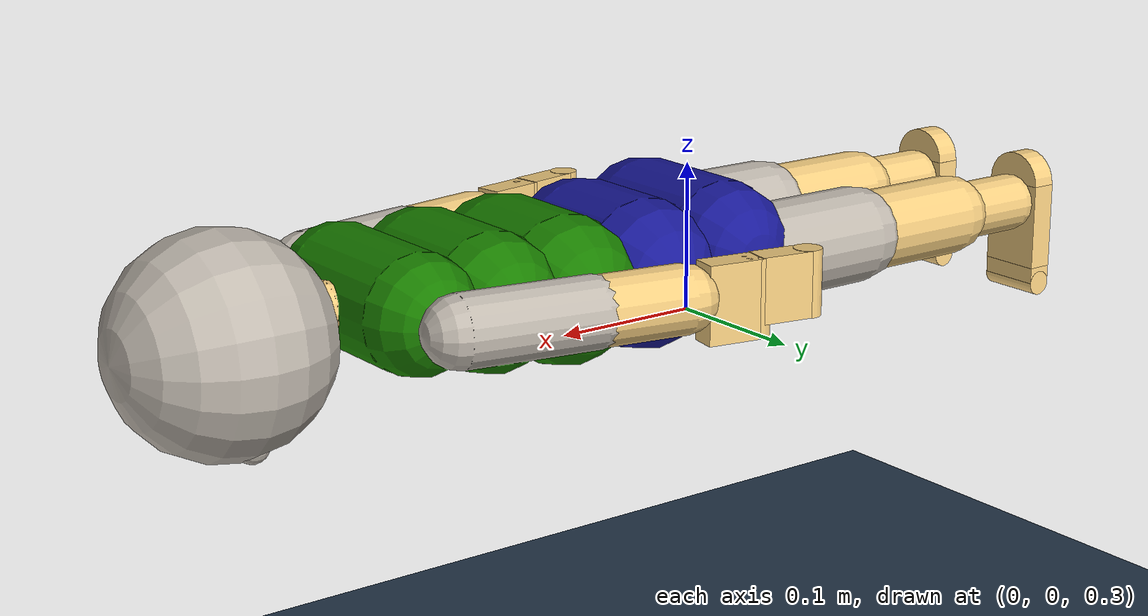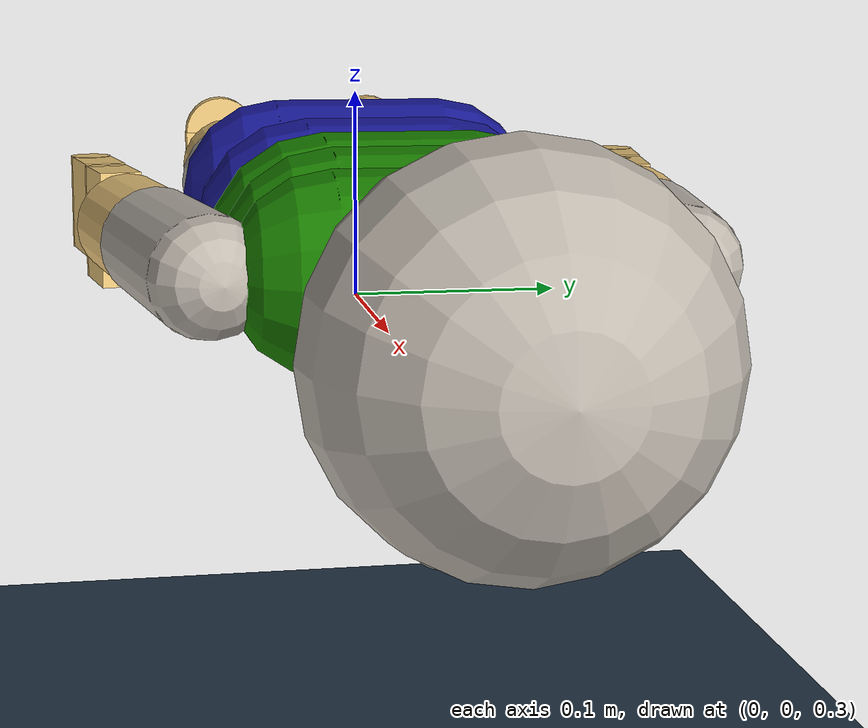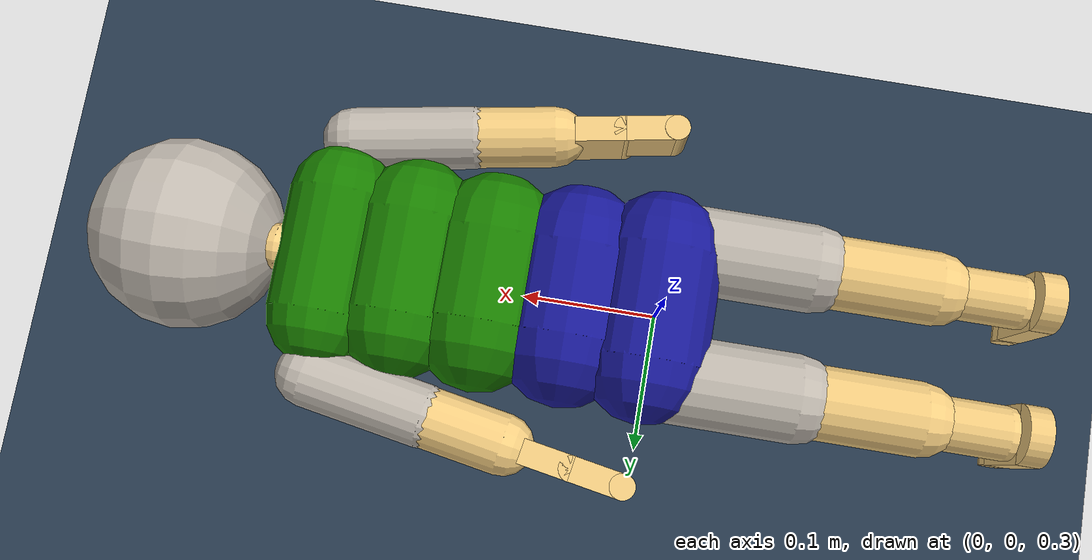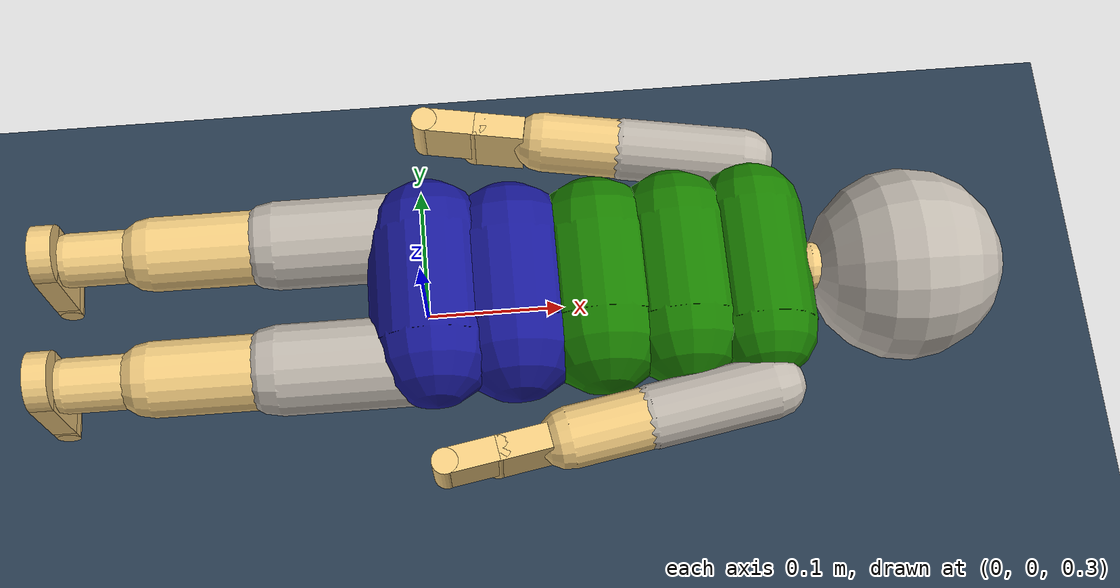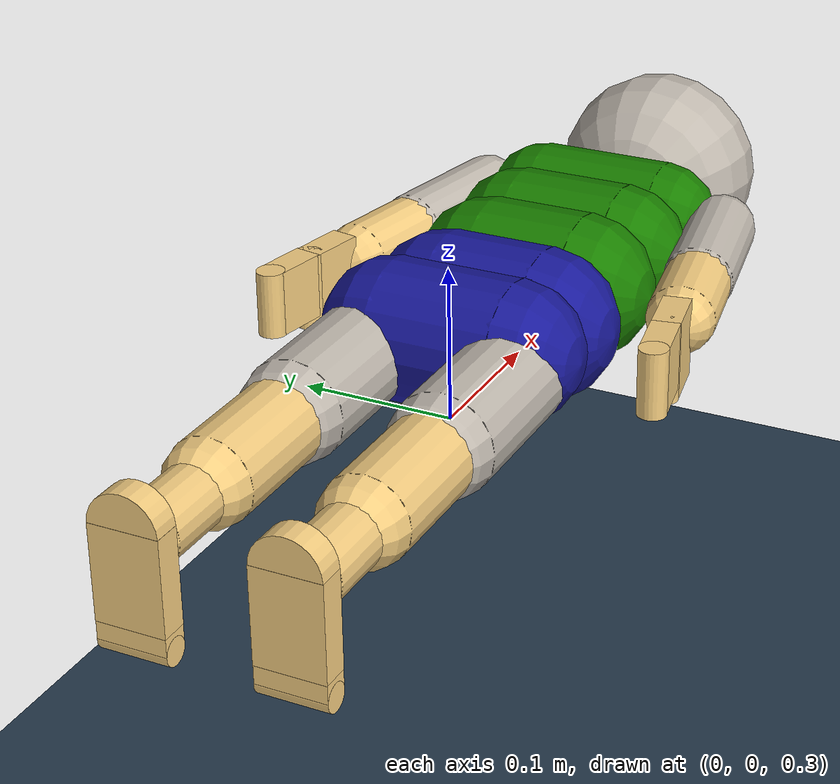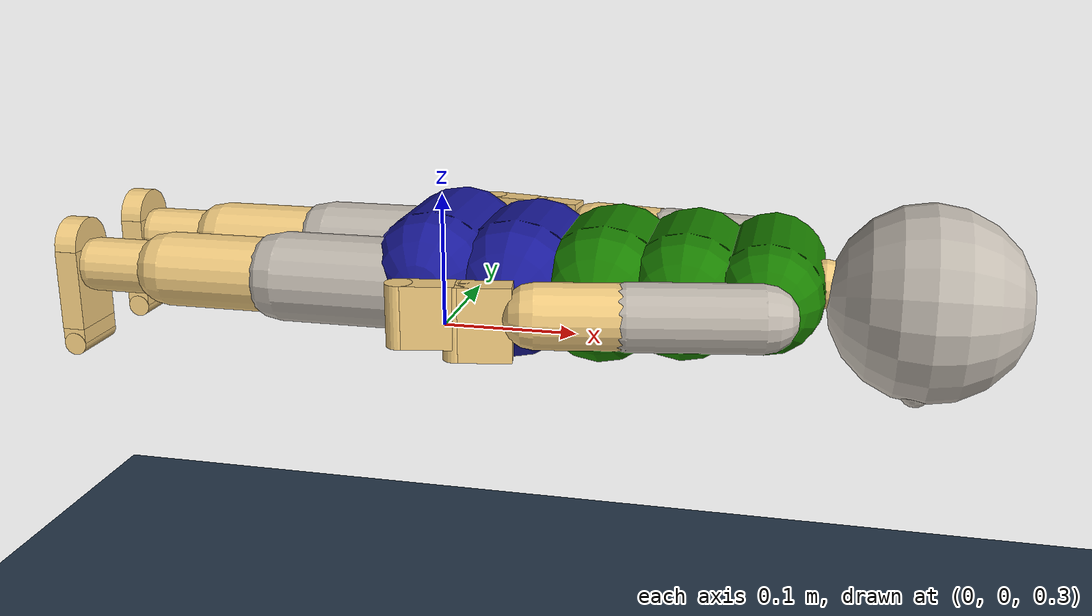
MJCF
<mujoco model="MIMo">

    <compiler inertiafromgeom="true" angle="degree"/>
    <option timestep="0.005" iterations="50" tolerance="1e-10" solver="Newton" jacobian="dense" cone="elliptic" impratio="1.0"/>
    <size nconmax="1000" njmax="5000" nstack="10000000" nuser_cam="3"/>

    <visual>
        <map force="0.1" zfar="30" znear="0.005"/>
        <rgba haze="0.15 0.25 0.35 1"/>
        <quality shadowsize="4096"/>
        <global offwidth="800" offheight="800"/>
    </visual>

    <asset>

        <texture type="skybox" builtin="gradient" rgb1="0.3 0.5 0.7" rgb2="0 0 0" width="512" height="512"/>

        <texture name="texplane" type="2d" builtin="checker" rgb1=".2 .3 .4" rgb2=".1 0.15 0.2" width="512" height="512" mark="cross" markrgb=".8 .8 .8"/>
        <material name="matplane" reflectance="0.3" texture="texplane" texrepeat="1 1" texuniform="true"/>

        <material name="orange" rgba="0.9 0.4 0 1" specular=".2" shininess=".8"/>

    </asset>

	<size nuser_actuator="3" />

	<default>
		<default class="mimo">
        	<joint limited="true" damping=".1" stiffness=".1" armature="0.001" solimplimit="0.98 0.99 0.001 .5 1" solreflimit="0.02 1" />
        	<geom condim="3" material="skin" friction="1 0.005 0.0002" solimp="0.95 0.99 0.001 0.5 1" solref="0.005 1" />
        	<motor ctrlrange="-1 1" ctrllimited="true" forcelimited="true" />
		</default>
    </default>

    <asset>

		<texture name="tex_head_default" type="cube" fileright="tex/head_front.png" fileleft="tex/head_back.png" fileup="tex/head_left.png" filedown="tex/head_right.png" filefront="tex/head_top.png" rgb1="0.95 .8 .5" />
		<texture name="tex_head_happy" type="cube" fileright="tex/head_front_happy.png" fileleft="tex/head_back.png" fileup="tex/head_left.png" filedown="tex/head_right.png" filefront="tex/head_top.png" rgb1="0.95 .8 .5" />
		<texture name="tex_head_sad" type="cube" fileright="tex/head_front_sad.png" fileleft="tex/head_back.png" fileup="tex/head_left.png" filedown="tex/head_right.png" filefront="tex/head_top.png" rgb1="0.95 .8 .5" />
		<texture name="tex_head_surprised" type="cube" fileright="tex/head_front_surprised.png" fileleft="tex/head_back.png" fileup="tex/head_left.png" filedown="tex/head_right.png" filefront="tex/head_top.png" rgb1="0.95 .8 .5" />
		<texture name="tex_head_angry" type="cube" fileright="tex/head_front_angry.png" fileleft="tex/head_back.png" fileup="tex/head_left.png" filedown="tex/head_right.png" filefront="tex/head_top.png" rgb1="0.95 .8 .5" />
		<texture name="tex_head_disgusted" type="cube" fileright="tex/head_front_disgusted.png" fileleft="tex/head_back.png" fileup="tex/head_left.png" filedown="tex/head_right.png" filefront="tex/head_top.png" rgb1="0.95 .8 .5" />
		<texture name="tex_head_scared" type="cube" fileright="tex/head_front_scared.png" fileleft="tex/head_back.png" fileup="tex/head_left.png" filedown="tex/head_right.png" filefront="tex/head_top.png" rgb1="0.95 .8 .5" />
		<texture name="tex_top_sleeve" type="cube" fileright="tex/sleeve_right.png" fileleft="tex/sleeve_left.png" fileup="tex/sleeve_up.png" filedown="tex/sleeve_down.png" filefront="tex/sleeve_front.png" fileback="tex/sleeve_back.png" rgb1="0.95 .8 .5" />
		<texture name="tex_pants_leg" type="cube" fileright="tex/leg_right.png" fileleft="tex/leg_left.png" fileup="tex/leg_up.png" filedown="tex/leg_down.png" filefront="tex/leg_front.png" fileback="tex/leg_back.png" rgb1="0.95 .8 .5" />
		<texture name="tex_eye_left" type="cube" fileright="tex/eye_pupil_left.png" rgb1="1 1 1" />
		<texture name="tex_eye_right" type="cube" fileright="tex/eye_pupil_right.png" rgb1="1 1 1" />

		<material name="skin" rgba="0.95 0.8 0.5 1" specular=".15" shininess=".7" />
		<material name="buttons" rgba=".05 .05 .05 1" specular=".9" shininess=".9" />
		<material name="head" texture="tex_head_default" texuniform="true" specular=".0" shininess=".0" />
		<material name="top_up" rgba=".1 .5 0.0 1" specular=".0" shininess=".0" />
		<material name="top_middle" rgba=".1 .5 0.0 1" specular=".0" shininess=".0" />
		<material name="top_down" rgba=".1 .5 0.0 1" specular=".0" shininess=".0" />
		<material name="top_sleeve" texture="tex_top_sleeve" texuniform="true" specular=".0" shininess=".0" />
		<material name="pants_up" rgba="0.1 0.1 0.6 1" specular=".0" shininess=".0" />
		<material name="pants_down" rgba="0.1 0.1 0.6 1" specular=".0" shininess=".0" />
		<material name="pants_leg" texture="tex_pants_leg" texuniform="true" specular=".0" shininess=".0" />
		<material name="eye_left" texture="tex_eye_left" texuniform="true" specular=".0" shininess=".0" />
		<material name="eye_right" texture="tex_eye_right" texuniform="true" specular=".0" shininess=".0" />

    </asset>

	<contact>
		<pair geom1="lb" geom2="ub1" condim="1" />
		<exclude body1="left_eye" body2="upper_body" />
		<exclude body1="right_eye" body2="upper_body" />
	</contact>

	<tendon>
		<fixed class="mimo" name="hip_bend" limited="true" range="-.01 .01">
			<joint joint="robot:hip_bend1" coef="1" />
			<joint joint="robot:hip_bend2" coef="-1" />
		</fixed>
		<fixed class="mimo" name="hip_rotation" limited="true" range="-.01 .01">
			<joint joint="robot:hip_rot1" coef="1" />
			<joint joint="robot:hip_rot2" coef="-1" />
		</fixed>
		<fixed class="mimo" name="hip_lean" limited="true" range="-.01 .01">
			<joint joint="robot:hip_lean1" coef="1" />
			<joint joint="robot:hip_lean2" coef="-.5" />
		</fixed>
		<fixed class="mimo" name="head_limits1" limited="true" range="-2.1 2.1">
			<joint joint="robot:head_swivel" coef="1" />
			<joint joint="robot:head_tilt_side" coef="1" />
		</fixed>
		<fixed class="mimo" name="head_limits2" limited="true" range="-2.1 2.1">
			<joint joint="robot:head_tilt" coef="1" />
			<joint joint="robot:head_tilt_side" coef="1" />
		</fixed>
		<fixed class="mimo" name="head_limits3" limited="true" range="-2.1 2.1">
			<joint joint="robot:head_swivel" coef="1" />
			<joint joint="robot:head_tilt" coef="1" />
		</fixed>
		<fixed class="mimo" name="head_limits1_sym" limited="true" range="-2.1 2.1">
			<joint joint="robot:head_swivel" coef="1" />
			<joint joint="robot:head_tilt_side" coef="-1" />
		</fixed>
		<fixed class="mimo" name="head_limits2_sym" limited="true" range="-2.1 2.1">
			<joint joint="robot:head_tilt" coef="1" />
			<joint joint="robot:head_tilt_side" coef="-1" />
		</fixed>
		<fixed class="mimo" name="head_limits3_sym" limited="true" range="-2.1 2.1">
			<joint joint="robot:head_swivel" coef="1" />
			<joint joint="robot:head_tilt" coef="-1" />
		</fixed>
	</tendon>

	<sensor>
		<accelerometer name="vestibular_acc" site="vestibular" />
		<gyro name="vestibular_gyro" site="vestibular" />

		<torque name="proprio:neck" site="torque_neck" />
		<torque name="proprio:left_eye" site="torque_left_eye" />
		<torque name="proprio:right_eye" site="torque_right_eye" />

		<torque name="proprio:chest" site="torque_chest" />
		<torque name="proprio:trunk_upper" site="torque_ub" />
		<torque name="proprio:trunk_lower" site="torque_lb" />

		<torque name="proprio:right_shoulder" site="torque_right_shoulder" />
		<torque name="proprio:right_elbow" site="torque_right_elbow" />
		<torque name="proprio:right_wrist" site="torque_right_wrist" />
		<torque name="proprio:right_fingers" site="torque_right_fingers" />

		<torque name="proprio:left_shoulder" site="torque_left_shoulder" />
		<torque name="proprio:left_elbow" site="torque_left_elbow" />
		<torque name="proprio:left_wrist" site="torque_left_wrist" />
		<torque name="proprio:left_fingers" site="torque_left_fingers" />

		<torque name="proprio:right_hip" site="torque_right_hip" />
		<torque name="proprio:right_knee" site="torque_right_knee" />
		<torque name="proprio:right_ankle" site="torque_right_ankle" />
		<torque name="proprio:right_toes" site="torque_right_toes" />

		<torque name="proprio:left_hip" site="torque_left_hip" />
		<torque name="proprio:left_knee" site="torque_left_knee" />
		<torque name="proprio:left_ankle" site="torque_left_ankle" />
		<torque name="proprio:left_toes" site="torque_left_toes" />

		<framelinvel name="kobayashi:left_wrist" objtype="site" objname="KOBAYASHI_LWrist" />
		<framelinvel name="kobayashi:right_wrist" objtype="site" objname="KOBAYASHI_RWrist" />
		<framelinvel name="kobayashi:left_ankle" objtype="site" objname="KOBAYASHI_LAnkle" />
		<framelinvel name="kobayashi:right_ankle" objtype="site" objname="KOBAYASHI_RAnkle" />
		<framelinvel name="kobayashi:torso" objtype="site" objname="KOBAYASHI_Torso" />
	</sensor>

  <actuator>
		<motor class="mimo" name="act:hip_bend" joint="robot:hip_bend1" gear="8.348962822270403" forcerange="-1 .765" user=".8574 32.93 22.97" />
		<motor class="mimo" name="act:hip_twist" joint="robot:hip_rot1" gear="2.864530722574817" forcerange="-1 1" user="1.699 8.136 8.136" />
		<motor class="mimo" name="act:hip_lean" joint="robot:hip_lean1" gear="5.721170175941438" forcerange="-1 1" user="1.278 1.264 1.264" />

		<motor class="mimo" name="act:chest_twist" joint="robot:chest_rot" gear="0.28408569149502316" forcerange="-1 1" user="1.699 8.136 8.136" />
		<motor class="mimo" name="act:chest_lean" joint="robot:chest_lean" gear="0.5681713829900463" forcerange="-1 1" user="1.278 1.264 1.264" />

		<motor class="mimo" name="act:head_swivel" joint="robot:head_swivel" gear="1.5138589850766264" forcerange="-1 1" user=".6665 24.87 24.87" />
		<motor class="mimo" name="act:head_tilt" joint="robot:head_tilt" gear="2.775408139307148" forcerange="-1 .55" user=".9338 31.39 16.86" />
		<motor class="mimo" name="act:head_tilt_side" joint="robot:head_tilt_side" gear="1.5138589850766264" forcerange="-1 1" user="1.068 15.69 15.69" />

		<motor class="mimo" name="act:left_eye_horizontal" joint="robot:left_eye_horizontal" gear="0.004541576955229879" forcerange="-1 1" user="5.110 .03025 .03025" />
		<motor class="mimo" name="act:left_eye_vertical" joint="robot:left_eye_vertical" gear="0.004541576955229879" forcerange="-1 1" user="6.179 .02619 .02771" />
		<motor class="mimo" name="act:left_eye_torsional" joint="robot:left_eye_torsional" gear="0.0031118212471019538" forcerange="-1 1" user="25.03 .003686 .003686" />
		<motor class="mimo" name="act:right_eye_horizontal" joint="robot:right_eye_horizontal" gear="0.004541576955229879" forcerange="-1 1" user="5.110 .03025 .03025" />
		<motor class="mimo" name="act:right_eye_vertical" joint="robot:right_eye_vertical" gear="0.004541576955229879" forcerange="-1 1" user="6.179 .02619 .02771" />
		<motor class="mimo" name="act:right_eye_torsional" joint="robot:right_eye_torsional" gear="0.0031118212471019538" forcerange="-1 1" user="25.03 .003686 .003686" />

		<motor class="mimo" name="act:right_shoulder_horizontal" joint="robot:right_shoulder_horizontal" gear="1.3755408505747688" forcerange="-1 1" user="1.811 18.80 15.30" />
		<motor class="mimo" name="act:right_shoulder_abduction" joint="robot:right_shoulder_ad_ab" gear="3.0567574457217086" forcerange="-.6875 1" user=".8793 44.17 69.23" />
		<motor class="mimo" name="act:right_shoulder_internal" joint="robot:right_shoulder_rotation" gear="1.9104734035760678" forcerange="-1 .64" user="1.498 25.09 17.10" />
		<motor class="mimo" name="act:right_elbow" joint="robot:right_elbow" gear="2.753398767624756" forcerange="-1 .83" user="1.566 35.43 27.04" />
		<motor class="mimo" name="act:right_wrist_rotation" joint="robot:right_hand1" gear="0.4985704438084411" forcerange="-1 1" user="1.513 7.842 7.842" />
		<motor class="mimo" name="act:right_wrist_flexion" joint="robot:right_hand2" gear="0.8831819290320958" forcerange="-1 .57" user="1.455 13.66 7.874" />
		<motor class="mimo" name="act:right_wrist_ulnar" joint="robot:right_hand3" gear="0.67663131659717" forcerange="-.87 1" user="2.254 5.155 6.021" />
		<motor class="mimo" name="act:right_fingers" joint="robot:right_fingers" gear="0.491448008896892" forcerange="-1 .33" user="3.019 6.854 2.551" />

		<motor class="mimo" name="act:left_shoulder_horizontal" joint="robot:left_shoulder_horizontal" gear="1.3755408505747688" forcerange="-1 1" user="1.811 18.80 15.30" />
		<motor class="mimo" name="act:left_shoulder_abduction" joint="robot:left_shoulder_ad_ab" gear="3.0567574457217086" forcerange="-.6875 1" user=".8793 44.17 69.23" />
		<motor class="mimo" name="act:left_shoulder_internal" joint="robot:left_shoulder_rotation" gear="1.9104734035760678" forcerange="-1 .64" user="1.498 25.09 17.10" />
		<motor class="mimo" name="act:left_elbow" joint="robot:left_elbow" gear="2.753398767624756" forcerange="-1 .83" user="1.566 35.43 27.04" />
		<motor class="mimo" name="act:left_wrist_rotation" joint="robot:left_hand1" gear="0.4985704438084411" forcerange="-1 1" user="1.513 7.842 7.842" />
		<motor class="mimo" name="act:left_wrist_flexion" joint="robot:left_hand2" gear="0.8831819290320958" forcerange="-1 .57" user="1.455 13.66 7.874" />
		<motor class="mimo" name="act:left_wrist_ulnar" joint="robot:left_hand3" gear="0.67663131659717" forcerange="-.87 1" user="2.254 5.155 6.021" />
		<motor class="mimo" name="act:left_fingers" joint="robot:left_fingers" gear="0.491448008896892" forcerange="-1 .33" user="3.019 6.854 2.551" />

		<motor class="mimo" name="act:right_hip_flex" joint="robot:right_hip1" gear="4.843924701479123" forcerange="-1 1" user="1.083 71.25 92.49" />
		<motor class="mimo" name="act:right_hip_abduction" joint="robot:right_hip2" gear="3.778261267153716" forcerange="-1 1" user="1.488 24.81 29.20" />
		<motor class="mimo" name="act:right_hip_rotation" joint="robot:right_hip3" gear="2.1434366804045117" forcerange="-.75 1" user="1.860 12.32 15.78" />
		<motor class="mimo" name="act:right_knee" joint="robot:right_knee" gear="7.503624246731628" forcerange="-.65 1" user="1.450 63.16 89.27" />
		<motor class="mimo" name="act:right_foot_flexion" joint="robot:right_foot1" gear="2.3013445445638028" forcerange="-1 .5" user="1.430 21.34 11.87" />
		<motor class="mimo" name="act:right_foot_inversion" joint="robot:right_foot2" gear="0.706232717379368" forcerange="-.91 1" user="1.988 4.184 4.645" />
		<motor class="mimo" name="act:right_foot_rotation" joint="robot:right_foot3" gear="0.7305855697027945" forcerange="-1 1" user="2.688 3.868 3.625" />
		<motor class="mimo" name="act:right_toes" joint="robot:right_toes" gear="0.20091103166826849" forcerange="-1 .3" user="1.290 2.947 .8440" />

		<motor class="mimo" name="act:left_hip_flex" joint="robot:left_hip1" gear="4.843924701479123" forcerange="-1 1" user="1.083 71.25 92.49" />
		<motor class="mimo" name="act:left_hip_abduction" joint="robot:left_hip2" gear="3.778261267153716" forcerange="-1 1" user="1.488 24.81 29.20" />
		<motor class="mimo" name="act:left_hip_rotation" joint="robot:left_hip3" gear="2.1434366804045117" forcerange="-.75 1" user="1.860 12.32 15.78" />
		<motor class="mimo" name="act:left_knee" joint="robot:left_knee" gear="7.503624246731628" forcerange="-.65 1" user="1.450 63.16 89.27" />
		<motor class="mimo" name="act:left_foot_flexion" joint="robot:left_foot1" gear="2.3013445445638028" forcerange="-1 .5" user="1.430 21.34 11.87" />
		<motor class="mimo" name="act:left_foot_inversion" joint="robot:left_foot2" gear="0.706232717379368" forcerange="-.91 1" user="1.988 4.184 4.645" />
		<motor class="mimo" name="act:left_foot_rotation" joint="robot:left_foot3" gear="0.7305855697027945" forcerange="-1 1" user="2.688 3.868 3.625" />
		<motor class="mimo" name="act:left_toes" joint="robot:left_toes" gear="0.20091103166826849" forcerange="-1 .3" user="1.290 2.947 .8440" />
	</actuator>

	<equality>
		<joint name="robot:hip_lean1" joint1="robot:hip_lean1" active="false" polycoef="0 1 0 0 0" />
		<joint name="robot:hip_rot1" joint1="robot:hip_rot1" active="false" polycoef="0 1 0 0 0" />
		<joint name="robot:hip_bend1" joint1="robot:hip_bend1" active="false" polycoef="0 1 0 0 0" />
		<joint name="robot:hip_lean2" joint1="robot:hip_lean2" active="false" polycoef="0 1 0 0 0" />
		<joint name="robot:hip_rot2" joint1="robot:hip_rot2" active="false" polycoef="0 1 0 0 0" />
		<joint name="robot:hip_bend2" joint1="robot:hip_bend2" active="false" polycoef="0 1 0 0 0" />
		<joint name="robot:head_swivel" joint1="robot:head_swivel" active="false" polycoef="0 1 0 0 0" />
		<joint name="robot:head_tilt" joint1="robot:head_tilt" active="false" polycoef="0 1 0 0 0" />
		<joint name="robot:head_tilt_side" joint1="robot:head_tilt_side" active="false" polycoef="0 1 0 0 0" />
		<joint name="robot:left_eye_horizontal" joint1="robot:left_eye_horizontal" active="false" polycoef="0 1 0 0 0" />
		<joint name="robot:left_eye_vertical" joint1="robot:left_eye_vertical" active="false" polycoef="0 1 0 0 0" />
		<joint name="robot:left_eye_torsional" joint1="robot:left_eye_torsional" active="false" polycoef="0 1 0 0 0" />
		<joint name="robot:right_eye_horizontal" joint1="robot:right_eye_horizontal" active="false" polycoef="0 1 0 0 0" />
		<joint name="robot:right_eye_vertical" joint1="robot:right_eye_vertical" active="false" polycoef="0 1 0 0 0" />
		<joint name="robot:right_eye_torsional" joint1="robot:right_eye_torsional" active="false" polycoef="0 1 0 0 0" />
		<joint name="robot:right_shoulder_horizontal" joint1="robot:right_shoulder_horizontal" active="false" polycoef="0 1 0 0 0" />
		<joint name="robot:right_shoulder_ad_ab" joint1="robot:right_shoulder_ad_ab" active="false" polycoef="0 1 0 0 0" />
		<joint name="robot:right_shoulder_rotation" joint1="robot:right_shoulder_rotation" active="false" polycoef="0 1 0 0 0" />
		<joint name="robot:right_elbow" joint1="robot:right_elbow" active="false" polycoef="0 1 0 0 0" />
		<joint name="robot:right_hand1" joint1="robot:right_hand1" active="false" polycoef="0 1 0 0 0" />
		<joint name="robot:right_hand2" joint1="robot:right_hand2" active="false" polycoef="0 1 0 0 0" />
		<joint name="robot:right_hand3" joint1="robot:right_hand3" active="false" polycoef="0 1 0 0 0" />
		<joint name="robot:right_fingers" joint1="robot:right_fingers" active="false" polycoef="0 1 0 0 0" />
		<joint name="robot:left_shoulder_horizontal" joint1="robot:left_shoulder_horizontal" active="false" polycoef="0 1 0 0 0" />
		<joint name="robot:left_shoulder_ad_ab" joint1="robot:left_shoulder_ad_ab" active="false" polycoef="0 1 0 0 0" />
		<joint name="robot:left_shoulder_rotation" joint1="robot:left_shoulder_rotation" active="false" polycoef="0 1 0 0 0" />
		<joint name="robot:left_elbow" joint1="robot:left_elbow" active="false" polycoef="0 1 0 0 0" />
		<joint name="robot:left_hand1" joint1="robot:left_hand1" active="false" polycoef="0 1 0 0 0" />
		<joint name="robot:left_hand2" joint1="robot:left_hand2" active="false" polycoef="0 1 0 0 0" />
		<joint name="robot:left_hand3" joint1="robot:left_hand3" active="false" polycoef="0 1 0 0 0" />
		<joint name="robot:left_fingers" joint1="robot:left_fingers" active="false" polycoef="0 1 0 0 0" />
		<joint name="robot:right_hip1" joint1="robot:right_hip1" active="false" polycoef="0 1 0 0 0" />
		<joint name="robot:right_hip2" joint1="robot:right_hip2" active="false" polycoef="0 1 0 0 0" />
		<joint name="robot:right_hip3" joint1="robot:right_hip3" active="false" polycoef="0 1 0 0 0" />
		<joint name="robot:right_knee" joint1="robot:right_knee" active="false" polycoef="0 1 0 0 0" />
		<joint name="robot:right_foot1" joint1="robot:right_foot1" active="false" polycoef="0 1 0 0 0" />
		<joint name="robot:right_foot2" joint1="robot:right_foot2" active="false" polycoef="0 1 0 0 0" />
		<joint name="robot:right_foot3" joint1="robot:right_foot3" active="false" polycoef="0 1 0 0 0" />
		<joint name="robot:right_toes" joint1="robot:right_toes" active="false" polycoef="0 1 0 0 0" />
		<joint name="robot:left_hip1" joint1="robot:left_hip1" active="false" polycoef="0 1 0 0 0" />
		<joint name="robot:left_hip2" joint1="robot:left_hip2" active="false" polycoef="0 1 0 0 0" />
		<joint name="robot:left_hip3" joint1="robot:left_hip3" active="false" polycoef="0 1 0 0 0" />
		<joint name="robot:left_knee" joint1="robot:left_knee" active="false" polycoef="0 1 0 0 0" />
		<joint name="robot:left_foot1" joint1="robot:left_foot1" active="false" polycoef="0 1 0 0 0" />
		<joint name="robot:left_foot2" joint1="robot:left_foot2" active="false" polycoef="0 1 0 0 0" />
		<joint name="robot:left_foot3" joint1="robot:left_foot3" active="false" polycoef="0 1 0 0 0" />
		<joint name="robot:left_toes" joint1="robot:left_toes" active="false" polycoef="0 1 0 0 0" />
	</equality>

    <equality>
        <weld body1="head" body2="upper_body"/>
        <weld body1="left_eye" body2="head"/>
        <weld body1="right_eye" body2="head"/>
    </equality>

    <worldbody>

        <geom name="floor" pos="0 0 0" size="0 0 .25" type="plane" material="matplane" condim="3"/>

        <light directional="false" diffuse=".4 .4 .4" specular="0 0 0" pos="0 0 10" dir="0 0 -1" castshadow="false"/>
        <light mode="targetbodycom" target="upper_body" directional="false" diffuse=".75 .75 .75" specular="0.3 0.3 0.3" pos="3 0 5" dir="0 0 -1"/>

        <body name="mimo_location" pos="0 0 0.35" euler="0 90 0">
            <freejoint name="mimo_location"/>

	<body childclass="mimo" name="hip" pos="0 0 0">

		<geom name="lb" type="capsule" size="0.04435645780457978 0.039735993449936044 0.0" mass="0.9141246250773187" material="pants_down" pos="-0.002 0.0 0.004620464354643727" euler="90 0 0" />
		<site name="lowerBody_center" type="sphere" size=".01 .01 .01" pos="0 0 0" />
		<site name="BODY_25:MidHip" type="sphere" size=".005" pos="0.005 0.0 -0.007" rgba="0 0 0 1" />
		<body name="lower_body" pos="0.002 0.0 0.07023105819058463">
			<joint name="robot:hip_lean1" type="hinge" pos="0.0 0.0 -0.04897692215922351" axis="1 0 0" range="-14 14" stiffness="3.38" damping="0.77" frictionloss=".049" armature="0.01" />
			<joint name="robot:hip_rot1" type="hinge" pos="0.0 0.0 -0.04897692215922351" axis="0 0 1" range="-18 18" stiffness="1.45" damping="0.29" frictionloss=".018" armature="0.01" />
			<joint name="robot:hip_bend1" type="hinge" pos="0.0 0.0 -0.04897692215922351" axis="0 1 0" range="-17 30.5" stiffness="2.20" damping="0.84" frictionloss="0.040" armature="0.01" />
			<site name="torque_lb" type="sphere" size="0.01" pos="0 0 0" group="4" />
			<geom name="cb" type="capsule" size="0.04897692215922351 0.03234325048250609 0.0" mass="1.0451986066254393" material="pants_up" contype="0" pos="0.005 0.0 -0.007392742967429963" euler="90 0 0" />

			<body name="upper_body" pos="-0.002 0.0 0.08409245125451584">

				<site name="KOBAYASHI_Torso" type="sphere" size="0.01" pos=".052 0 0.05" rgba="1 0 0 0" />
				<joint name="robot:hip_lean2" type="hinge" pos="0.0 0.0 -0.048052829288294754" axis="1 0 0" range="-27 27" stiffness="1.69" damping="0.38" frictionloss=".024" armature="0.01" />
				<joint name="robot:hip_rot2" type="hinge" pos="0.0 0.0 -0.048052829288294754" axis="0 0 1" range="-18 18" stiffness="1.45" damping="0.29" frictionloss=".018" armature="0.01" />
				<joint name="robot:hip_bend2" type="hinge" pos="0.0 0.0 -0.048052829288294754" axis="0 1 0" range="-17 30.5" stiffness="2.20" damping="0.84" frictionloss="0.040" armature="0.01" />
				<site name="torque_ub" type="sphere" size="0.01" pos="0 0 0" group="4" />
				<geom name="ub1" type="capsule" size="0.048052829288294754 0.03234325048250608 0.0" mass="0.8587279152357891" material="top_down" pos="0.007 0.0 -0.02957097186971985" euler="90 0 0" />
				<geom name="ub2" type="capsule" size="0.04435645780457978 0.036039621966221055 0.0" mass="0.7495916620864511" material="top_middle" pos="0.004 0.0 0.027722786127862362" euler="90 0 0" />
				<geom name="neck" type="capsule" size="0.017344627891129175 1e-06 0.0" mass="0.0" material="skin" pos="0.0 0.0 0.12105716609166564" euler="0 0 0" />

				<body name="chest" pos="0.0 0.0 0.08316835838358708">
					<site name="BODY_25:Neck" type="sphere" size=".005 .005 .005" pos="0.0 0.0 0.0" rgba="0 0 0 1" />
					<joint name="robot:chest_lean" type="hinge" pos="0 0 0" axis="1 0 0" range="-9 9" stiffness="1.69" damping="0.38" frictionloss=".024" armature="0.01" />
					<joint name="robot:chest_rot" type="hinge" pos="0 0 0" axis="0 0 1" range="-18 18" stiffness="1.45" damping="0.29" frictionloss=".018" armature="0.01" />
					<site name="torque_chest" type="sphere" size="0.01" pos="0 0 0" group="4" />
					<geom name="ub3" type="capsule" size="0.037887807708078564 0.04343236493365103 0.0" mass="0.5695128987554394" material="top_up" pos="0 0 0" euler="90 0 0" />

					<body name="right_upper_arm" pos="0.0 -0.08701004209137668 0.0" euler="170 0 0">

						<site name="BODY_25:RShoulder" type="sphere" size=".005 .005 .005" pos="0.0 0.0 0.0" rgba="0 0 0 1" />
						<joint name="robot:right_shoulder_horizontal" type="hinge" pos="0 0 0" axis="0 1 -4" range="-28 118" stiffness=".09" damping=".05" frictionloss=".0009" armature="0.004" />
						<joint name="robot:right_shoulder_ad_ab" type="hinge" pos="0 0 0" axis="-1 0 0" range="-84 183" stiffness=".11" damping=".10" frictionloss=".0014" armature="0.004" />
						<joint name="robot:right_shoulder_rotation" type="hinge" pos="0 0 0" axis="0 0 -1" range="-99 67" stiffness=".12" damping=".07" frictionloss=".0008" armature="0.004" />
						<site name="torque_right_shoulder" type="sphere" size="0.01" pos="0 0 0" group="4" />
						<geom name="right_uarm1" type="capsule" material="top_sleeve" size="0.022759477798588335 0.04397066491709746 0.0" mass="0.20510842460792666" pos="0.0 0.0 0.04397066491709746" euler="0 0 0" />
						<body name="right_lower_arm" pos="0.0 -0.0 0.08794132983419492" euler="0 0 0">

							<site name="KOBAYASHI_RWrist" type="sphere" size=".01" pos="0 0.025 .07" rgba="1 0 0 0" />
							<site name="BODY_25:RElbow" type="sphere" size=".005 .005 .005" pos="0.0 0.0 0.0" rgba="0 0 0 1" />
							<joint name="robot:right_elbow" type="hinge" pos="0 0 0" axis="0 -1 0" springref="-20" range="-146 5" stiffness=".13" damping=".11" frictionloss=".030" armature="0.002" />
							<site name="torque_right_elbow" type="sphere" size="0.01" pos="0 0 0" group="4" />
							<geom name="right_larm" type="capsule" size="0.021959390287013505 0.029270071859147265 0.0" mass="0.14172355323357425" pos="0.0 0.0 0.029270071859147265" />
							<body name="right_hand" pos="0.0 -0.0 0.07220061297383298" euler="0 0 0">
								<site name="BODY_25:RWrist" type="sphere" size=".005 .005 .005" pos="0.0 0.0 0.0" />
								<joint name="robot:right_hand1" type="hinge" pos="0 0 0" axis="0 0 -1" springref="-20" range="-90 90" stiffness=".22" damping=".03" frictionloss=".007" armature="0.001" />
								<joint name="robot:right_hand2" type="hinge" pos="0 0 0" axis="-1 0 0" range="-92 86" stiffness=".33" damping=".11" frictionloss=".007" armature="0.001" />
								<joint name="robot:right_hand3" type="hinge" pos="0 0 0" axis="0 1 0" range="-53 48" stiffness=".38" damping=".11" frictionloss=".007" armature="0.001" />
								<site name="torque_right_wrist" type="sphere" size="0.01" pos="0 0 0" group="4" />
								<geom name="geom:right_hand1" type="box" size="0.025247222919919644 0.00898395550261324 0.01835341721107353" mass="0.030733306643334624" pos="0.00449197775130662 0.0 0.01835341721107353" />
								<geom name="geom:right_hand2" type="cylinder" size="0.00918395550261324 0.025247222919919644 0.0" mass="0.011794798575441133" pos="0.00449197775130662 0.0 0.03670683442214706" euler="0 90 0" />
								<body name="right_fingers" pos="0.0 -0.0 0.03670683442214706">
									<joint name="robot:right_fingers" type="hinge" pos="0 0 0" axis="-1 0 0" springref="-40" range="-160 8" stiffness=".017" damping=".018" frictionloss=".0023" armature="0.0001" />
									<site name="torque_right_fingers" type="sphere" size="0.01" pos="0 0 0" group="4" />
									<geom name="geom:right_fingers1" type="box" size="0.021208014766483194 0.00898395550261324 0.018265179628327986" mass="0.02576376120179916" pos="0.0 0.0 0.018265179628327986" friction="5 0.02 0.01" />
									<geom name="geom:right_fingers2" type="cylinder" size="0.00918395550261324 0.021408014766483192 0.0" mass="0.009983150124551959" pos="0.0 0.0 0.03653035925665597" euler="0 90 0" friction="5 0.02 0.01" />
								</body>
							</body>
						</body>
					</body>

					<body name="left_upper_arm" pos="0.0 0.08701004209137668 0.0" euler="-170 0 0">

						<site name="BODY_25:LShoulder" type="sphere" size=".005 .005 .005" pos="0.0 0.0 0.0" rgba="0 0 0 1" />
						<joint name="robot:left_shoulder_horizontal" type="hinge" pos="0 0 0" axis="0 1 4" range="-28 118" stiffness=".09" damping=".05" frictionloss=".0009" armature="0.004" />
						<joint name="robot:left_shoulder_ad_ab" type="hinge" pos="0 0 0" axis="1 0 0" range="-84 183" stiffness=".11" damping=".10" frictionloss=".0014" armature="0.004" />
						<joint name="robot:left_shoulder_rotation" type="hinge" pos="0 0 0" axis="0 0 1" range="-99 67" stiffness=".12" damping=".07" frictionloss=".0008" armature="0.004" />
						<site name="torque_left_shoulder" type="sphere" size="0.01" pos="0 0 0" group="4" />
						<geom name="left_uarm1" type="capsule" material="top_sleeve" size="0.022759477798588335 0.04397066491709746 0.0" mass="0.20510842460792666" pos="0.0 0.0 0.04397066491709746" euler="0 0 0" />
						<body name="left_lower_arm" pos="0.0 0.0 0.08794132983419492" euler="0 0 0">

							<site name="KOBAYASHI_LWrist" type="sphere" size=".01" pos="0 -0.025 .07" rgba="1 0 0 0" />
							<site name="BODY_25:LElbow" type="sphere" size=".005 .005 .005" pos="0.0 0.0 0.0" rgba="0 0 0 1" />
							<joint name="robot:left_elbow" type="hinge" pos="0 0 0" axis="0 -1 0" springref="-20" range="-146 5" stiffness=".13" damping=".11" frictionloss=".030" armature="0.002" />
							<site name="torque_left_elbow" type="sphere" size="0.01" pos="0 0 0" group="4" />
							<geom name="left_larm" type="capsule" size="0.021959390287013505 0.029270071859147265 0.0" mass="0.14172355323357425" pos="0.0 0.0 0.029270071859147265" />
							<body name="left_hand" pos="0.0 0.0 0.07220061297383298" euler="0 0 0">
								<site name="BODY_25:LWrist" type="sphere" size=".005 .005 .005" pos="0.0 0.0 0.0" rgba="0 0 0 1" />
								<joint name="robot:left_hand1" type="hinge" pos="0 0 0" axis="0 0 1" springref="-20" range="-90 90" stiffness=".22" damping=".03" frictionloss=".007" armature="0.001" />
								<joint name="robot:left_hand2" type="hinge" pos="0 0 0" axis="1 0 0" range="-92 86" stiffness=".33" damping=".11" frictionloss=".007" armature="0.001" />
								<joint name="robot:left_hand3" type="hinge" pos="0 0 0" axis="0 1 0" range="-53 48" stiffness=".38" damping=".11" frictionloss=".007" armature="0.001" />
								<site name="torque_left_wrist" type="sphere" size="0.01" pos="0 0 0" group="4" />
								<geom name="geom:left_hand1" type="box" size="0.025247222919919644 0.00898395550261324 0.01835341721107353" mass="0.030733306643334624" pos="0.00449197775130662 0.0 0.01835341721107353" />
								<geom name="geom:left_hand2" type="cylinder" size="0.00918395550261324 0.025247222919919644 0.0" mass="0.011794798575441133" pos="0.00449197775130662 0.0 0.03670683442214706" euler="0 90 0" />
								<body name="left_fingers" pos="0.0 0.0 0.03670683442214706">
									<joint name="robot:left_fingers" type="hinge" pos="0 0 0" axis="1 0 0" springref="-40" range="-160 8" stiffness=".017" damping=".018" frictionloss=".0023" armature="0.0001" />
									<site name="torque_left_fingers" type="sphere" size="0.01" pos="0 0 0" group="4" />
									<geom name="geom:left_fingers1" type="box" size="0.021208014766483194 0.00898395550261324 0.018265179628327986" mass="0.02576376120179916" pos="0.0 0.0 0.018265179628327986" friction="5 0.02 0.01" />
									<geom name="geom:left_fingers2" type="cylinder" size="0.00918395550261324 0.021408014766483192 0.0" mass="0.009983150124551959" pos="0.0 0.0 0.03653035925665597" euler="0 90 0" friction="5 0.02 0.01" />
								</body>
							</body>
						</body>
					</body>
				</body>
				<body name="head" pos="0.0 0.0 0.12105816609166564">
					<geom name="head" type="sphere" size="0.0693785115645167 0.0 0.0" mass="1.4926649592855534" material="head" pos="0.009439253274083906 0.0 0.0693785115645167" />
					<site name="vestibular" type="sphere" size="0.01" pos="0.01 0.0 0.0693785115645167" group="4" />
					<site name="torque_neck" type="sphere" size="0.01" pos="0 0 0" group="4" />
					<joint name="robot:head_swivel" type="hinge" pos="0 0 0" axis="0 0 1" range="-111 111" stiffness=".23" damping=".29" frictionloss=".018" armature="0.005" />
					<joint name="robot:head_tilt" type="hinge" pos="0.0 0.0 0.011563085260752785" axis="0 1 0" range="-70 81" stiffness=".45" damping=".53" frictionloss=".018" armature="0.005" />
					<joint name="robot:head_tilt_side" type="hinge" pos="0.0 0.0 0.02312617052150557" axis="1 0 0" range="-70 70" stiffness=".37" damping=".29" frictionloss=".018" armature="0.005" />
					<body name="left_eye" pos="0.06607477291858735 0.02312617052150557 0.06359696893414031">
						<site name="BODY_25:LEye" type="sphere" size=".005 .005 .005" pos="0.0 0.0 0.0" rgba="0 0 0 1" />
						<site name="torque_left_eye" type="sphere" size="0.01" pos="0 0 0" group="4" />
						<joint name="robot:left_eye_horizontal" type="hinge" pos="0 0 0" axis="0 0 1" range="-45 45" stiffness=".00065" damping=".00042" frictionloss=".000054" armature=".0002" />
						<joint name="robot:left_eye_vertical" type="hinge" pos="0 0 0" axis="0 -1 0" range="-47 33" stiffness=".00065" damping=".00042" frictionloss=".000054" armature=".0002" />
						<joint name="robot:left_eye_torsional" type="hinge" pos="0 0 0" axis="-1 0 0" range="-8 8" stiffness=".00267" damping=".00042" frictionloss=".000037" armature=".0002" />
						<geom name="geom:left_eye1" type="sphere" material="eye_left" size="0.010619159933344393 0.0 0.0" mass="0.005277480628531017" pos="0 0 0" />
						<camera name="eye_left" mode="fixed" fovy="60" pos="0.01125 0 0" euler="90 -90 0" />
					</body>
					<body name="right_eye" pos="0.06607477291858735 -0.02312617052150557 0.06359696893414031">
						<site name="BODY_25:REye" type="sphere" size=".005 .005 .005" pos="0.0 0.0 0.0" rgba="0 0 0 1" />
						<site name="torque_right_eye" type="sphere" size="0.01" pos="0 0 0" group="4" />
						<joint name="robot:right_eye_horizontal" type="hinge" pos="0 0 0" axis="0 0 -1" range="-45 45" stiffness=".00065" damping=".00042" frictionloss=".000054" armature=".0002" />
						<joint name="robot:right_eye_vertical" type="hinge" pos="0 0 0" axis="0 -1 0" range="-47 33" stiffness=".00065" damping=".00042" frictionloss=".000054" armature=".0002" />
						<joint name="robot:right_eye_torsional" type="hinge" pos="0 0 0" axis="1 0 0" range="-8 8" stiffness=".00267" damping=".00042" frictionloss=".000037" armature=".0002" />
						<geom name="geom:right_eye1" type="sphere" material="eye_right" size="0.010619159933344393 0.0 0.0" mass="0.005277480628531017" pos="0 0 0" />
						<camera name="eye_right" mode="fixed" fovy="60" pos="0.01125 0 0" euler="90 -90 0" />
					</body>
					<site name="BODY_25:Nose" type="sphere" size=".005" pos="0.06465888492747476 0.0 0.041060751742264985" rgba="0 0 0 1" />
					<site name="BODY_25:LEar" type="sphere" size=".005" pos="0.01 0.05899533296302441 0.054275706325982456" rgba="0 0 0 1" />
					<site name="BODY_25:REar" type="sphere" size=".005" pos="0.01 -0.05899533296302441 0.054275706325982456" rgba="0 0 0 1" />
				</body>
			</body>
		</body>

		<body name="right_upper_leg" pos="0.005 -0.04712873641736601 -0.007">

			<joint name="robot:right_hip1" type="hinge" pos="0 0 0" axis="0 1 0" springref="-10" range="-133 20" stiffness="1.72" damping="1.27" frictionloss=".08" armature=".005" />
			<joint name="robot:right_hip2" type="hinge" pos="0 0 0" axis="1 0 0" range="-51 17" stiffness="3.51" damping="1.99" frictionloss=".062" armature=".005" />
			<joint name="robot:right_hip3" type="hinge" pos="0 0 0" axis="0 0 -1" range="-32 41" stiffness="2.16" damping="0.75" frictionloss=".027" armature=".005" />
			<site name="torque_right_hip" type="sphere" size="0.01" pos="0 0 0" group="4" />
			<site name="BODY_25:RHip" type="sphere" size=".005 .005 .005" pos="0.0 0.0 0.0" rgba="0 0 0 1" />
			<geom name="geom:right_upper_leg1" type="capsule" material="pants_leg" contype="2" conaffinity="3" size="0.03227522993603672 0.04784533751039521 0.0" mass="0.4842713720303753" pos="0.0 0.0 -0.04937638831072785" euler="0 0 0" />
			<body name="right_lower_leg" pos="0.0 -0.0 -0.11239579738246866">

				<site name="KOBAYASHI_RAnkle" type="sphere" size=".01" pos=".021 0 -.140" rgba="1 0 0 0" />
				<joint name="robot:right_knee" type="hinge" pos="0 0 0" axis="0 -1 0" springref="-30" range="-145 4" stiffness="1.63" damping="0.53" frictionloss=".065" armature=".003" />
				<site name="torque_right_knee" type="sphere" size="0.01" pos="0 0 0" group="4" />
				<site name="BODY_25:RKnee" type="sphere" size=".005 .005 .005" pos="0.0 0.0 0.0" rgba="0 0 0 1" />
				<geom name="geom:right_lower_leg1" type="capsule" size="0.0270288672368476 0.03668785975534771 0.0" mass="0.25069608608330374" pos="0.0 0.0 -0.03668785975534771" euler="0 0 0" />
				<geom name="geom:right_lower_leg2" type="capsule" size="0.019679500946790513 0.023346819844312184 0.0" mass="0.08844885200768453" pos="0.0 0.0 -0.11006357926604313" euler="0 0 0" />
				<body name="right_foot" pos="0.0 -0.0 -0.14675143902139084">
					<joint name="robot:right_foot1" type="hinge" pos="0.0 -0.0 0.012683041667558985" axis="0 -1 0" springref="-10" range="-63 32" stiffness="1.29" damping="0.6" frictionloss=".019" armature=".003" />
					<joint name="robot:right_foot2" type="hinge" pos="0.0 -0.0 0.012683041667558985" axis="1 0 0" range="-33 31" stiffness="0.96" damping="0.37" frictionloss=".011" armature=".0025" />
					<joint name="robot:right_foot3" type="hinge" pos="0.0 -0.0 0.012683041667558985" axis="0 0 1" range="-20 30" stiffness="1.15" damping="0.38" frictionloss=".012" armature=".002" />
					<site name="torque_right_ankle" type="sphere" size="0.01" pos="0 0 0" group="4" />
					<site name="BODY_25:RAnkle" type="sphere" size=".005" pos="0.0 0.0 0.012683041667558985" rgba="0 0 0 1" />
					<site name="BODY_25:RHeel" type="sphere" size=".005" pos="-0.02943907893663124 0.0 0.0" rgba="0 0 0 1" />
					<geom name="geom:right_foot1" type="cylinder" size="0.021301367201642513 0.00835536111170599 0.0" mass="0.01988232965890263" pos="-0.013457864656745708 0.0 0.0" euler="0 0 0" />
					<geom name="geom:right_foot2" type="box" size="0.02943907893663124 0.021401367201642513 0.00845536111170599" mass="0.03561604652301124" pos="0.015981214279885532 0.0 0.0" euler="0 0 0" friction="2 0.02 0.01" />
					<geom name="geom:right_foot3" type="cylinder" size="0.00835536111170599 0.021201367201642514 0.0" mass="0.0077213190905013615" pos="0.04542029321651677 0.0 0.0" euler="90 0 0" friction="2 0.02 0.01" />
					<body name="right_toes" pos="0.04542029321651677 -0.0 0.0">
						<joint name="robot:right_toes" type="hinge" pos="0 0 0" axis="0 -1 0" range="-60 80" frictionloss=".005" armature=".0005" stiffness=".106" damping=".04" />
						<site name="torque_right_toes" type="sphere" size="0.01" pos="0 0 0" group="4" />
						<geom name="geom:right_toes1" type="box" size="0.005887815787326247 0.021301367201642513 0.00835536111170599" mass="0.006582996401377012" pos="0.005887815787326247 0.0 0.0" euler="0 0 0" friction="2 0.02 0.01" />
						<geom name="geom:right_toes2" type="cylinder" size="0.00845536111170599 0.021401367201642513 0.0" mass="0.007503368928290247" pos="0.011775631574652494 0.0 0.0" euler="90 0 0" friction="2 0.02 0.01" />
						<site name="BODY_25:RBigToe" type="sphere" size=".005" pos="0.009252281951512674 0.010272656256788406 0.0" rgba="0 0 0 1" />
						<site name="BODY_25:RSmallToe" type="sphere" size=".005" pos="0.008411165410466067 -0.010272656256788406 0.0" rgba="0 0 0 1" />
					</body>
				</body>
			</body>
		</body>

		<body name="left_upper_leg" pos="0.005 0.04712873641736601 -0.007">

			<site name="BODY_25:LHip" type="sphere" size=".005 .005 .005" pos="0.0 0.0 0.0" rgba="0 0 0 1" />
			<joint name="robot:left_hip1" type="hinge" pos="0 0 0" axis="0 1 0" springref="-10" range="-133 20" stiffness="1.72" damping="1.27" frictionloss=".08" armature=".005" />
			<joint name="robot:left_hip2" type="hinge" pos="0 0 0" axis="-1 0 0" range="-51 17" stiffness="3.51" damping="1.99" frictionloss=".062" armature=".005" />
			<joint name="robot:left_hip3" type="hinge" pos="0 0 0" axis="0 0 1" range="-32 41" stiffness="2.16" damping="0.75" frictionloss=".027" armature=".005" />
			<site name="torque_left_hip" type="sphere" size="0.01" pos="0 0 0" group="4" />
			<geom name="geom:left_upper_leg1" type="capsule" material="pants_leg" contype="2" conaffinity="3" size="0.03227522993603672 0.04784533751039521 0.0" mass="0.4842713720303753" pos="0.0 0.0 -0.04937638831072785" euler="0 0 0" />
			<body name="left_lower_leg" pos="0.0 0.0 -0.11239579738246866">

				<site name="KOBAYASHI_LAnkle" type="sphere" size=".01" pos=".021 0 -.140" rgba="1 0 0 0" />
				<joint name="robot:left_knee" type="hinge" pos="0 0 0" axis="0 -1 0" springref="-30" range="-145 4" stiffness="1.63" damping="0.53" frictionloss=".065" armature=".003" />
				<site name="torque_left_knee" type="sphere" size="0.01" pos="0 0 0" group="4" />
				<site name="BODY_25:LKnee" type="sphere" size=".005" pos="0.0 0.0 0.0" rgba="0 0 0 1" />
				<geom name="geom:left_lower_leg1" type="capsule" size="0.0270288672368476 0.03668785975534771 0.0" mass="0.25069608608330374" pos="0.0 0.0 -0.03668785975534771" euler="0 0 0" />
				<geom name="geom:left_lower_leg2" type="capsule" size="0.019679500946790513 0.023346819844312184 0.0" mass="0.08844885200768453" pos="0.0 0.0 -0.11006357926604313" euler="0 0 0" />
				<body name="left_foot" pos="0.0 0.0 -0.14675143902139084">
					<joint name="robot:left_foot1" type="hinge" pos="0.0 0.0 0.012683041667558985" axis="0 -1 0" springref="-10" range="-63 32" stiffness="1.29" damping="0.6" frictionloss=".019" armature=".003" />
					<joint name="robot:left_foot2" type="hinge" pos="0.0 0.0 0.012683041667558985" axis="-1 0 0" range="-33 31" stiffness="0.96" damping="0.37" frictionloss=".011" armature=".0025" />
					<joint name="robot:left_foot3" type="hinge" pos="0.0 0.0 0.012683041667558985" axis="0 0 -1" range="-20 30" stiffness="1.15" damping="0.38" frictionloss=".012" armature=".002" />
					<site name="torque_left_ankle" type="sphere" size="0.01" pos="0 0 0" group="4" />
					<site name="BODY_25:LAnkle" type="sphere" size=".005" pos="0.0 0.0 0.012683041667558985" rgba="0 0 0 1" />
					<site name="BODY_25:LHeel" type="sphere" size=".005" pos="-0.02943907893663124 0.0 0.0" rgba="0 0 0 1" />
					<geom name="geom:left_foot1" type="cylinder" size="0.021301367201642513 0.00835536111170599 0.0" mass="0.01988232965890263" pos="-0.013457864656745708 0.0 0.0" euler="0 0 0" />
					<geom name="geom:left_foot2" type="box" size="0.02943907893663124 0.021401367201642513 0.00845536111170599" mass="0.03561604652301124" pos="0.015981214279885532 0.0 0.0" euler="0 0 0" friction="2 0.02 0.01" />
					<geom name="geom:left_foot3" type="cylinder" size="0.00835536111170599 0.021201367201642514 0.0" mass="0.0077213190905013615" pos="0.04542029321651677 0.0 0.0" euler="90 0 0" friction="2 0.02 0.01" />
					<body name="left_toes" pos="0.04542029321651677 0.0 0.0">
						<joint name="robot:left_toes" type="hinge" pos="0 0 0" axis="0 -1 0" range="-60 80" frictionloss=".005" armature=".0005" stiffness=".106" damping=".04" />
						<site name="torque_left_toes" type="sphere" size="0.01" pos="0 0 0" group="4" />
						<geom name="geom:left_toes1" type="box" size="0.005887815787326247 0.021301367201642513 0.00835536111170599" mass="0.006582996401377012" pos="0.005887815787326247 0.0 0.0" euler="0 0 0" friction="2 0.02 0.01" />
						<geom name="geom:left_toes2" type="cylinder" size="0.00845536111170599 0.021401367201642513 0.0" mass="0.007503368928290247" pos="0.011775631574652494 0.0 0.0" euler="90 0 0" friction="2 0.02 0.01" />
						<site name="BODY_25:LBigToe" type="sphere" size=".005" pos="0.009252281951512674 -0.010272656256788406 0.0" rgba="0 0 0 1" />
						<site name="BODY_25:LSmallToe" type="sphere" size=".005" pos="0.008411165410466067 0.010272656256788406 0.0" rgba="0 0 0 1" />
					</body>
				</body>
			</body>
		</body>

	</body>

        </body>

        <camera name="corner" pos="3 -3 3" fovy="20" mode="targetbody" target="mimo_location"/>
        <camera name="top" pos="0 0 2" euler="0 0 -90" mode="fixed"/>
        <camera name="side1" pos="2 0 .5" euler="90 90 0" mode="fixed"/>
        <camera name="side2" pos="0 2 .5" euler="90 180 0" mode="fixed"/>
        <camera name="closeup" pos="0.25 -0.25 1" mode="targetbody" target="mimo_location"/>

    </worldbody>

</mujoco>
